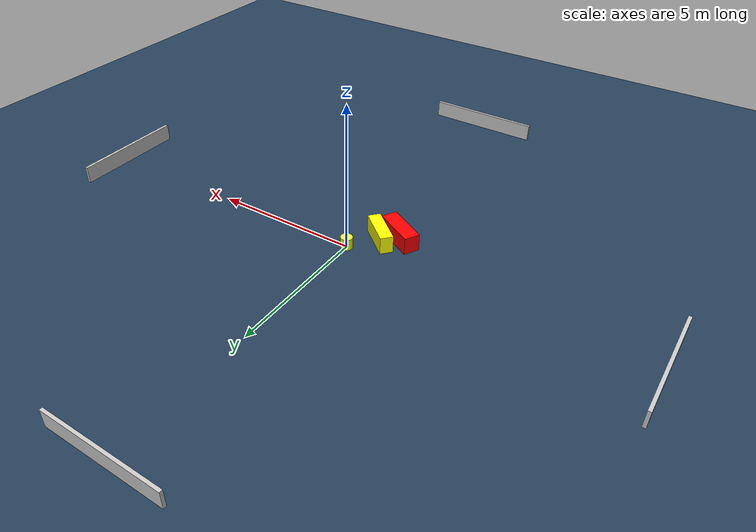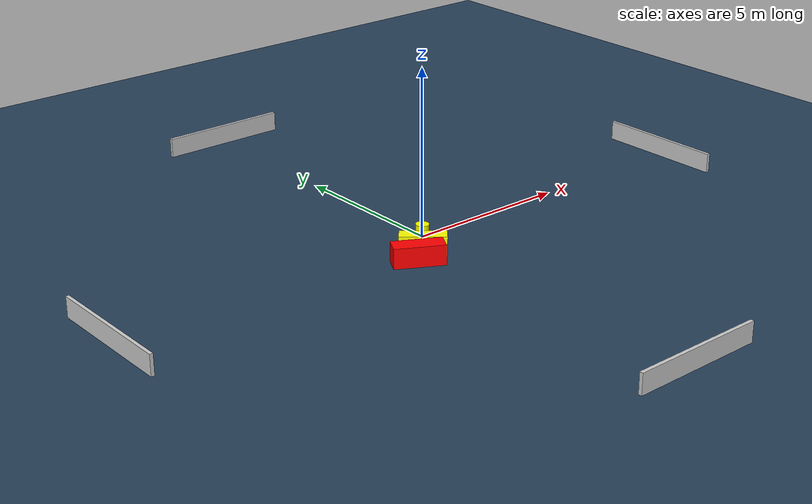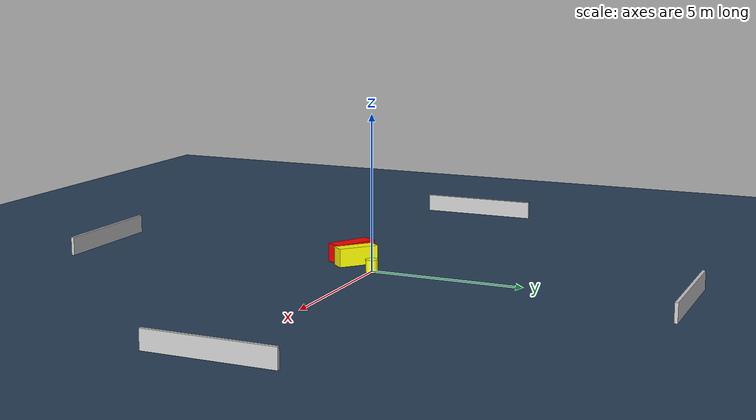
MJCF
<?xml version="1.0" ?>
<mujoco model="generated_environment">
  <option timestep="0.01" integrator="RK4" cone="elliptic"/>
  <default>
    <geom density="1"/>
  </default>
  <asset>
    <texture builtin="gradient" height="3072" name="skybox" rgb1="0.3 0.5 0.7" rgb2="0 0 0" type="skybox" width="512"/>
    <texture builtin="checker" height="300" name="groundplane" rgb1="0.2 0.3 0.4" rgb2="0.1 0.2 0.3" type="2d" width="300"/>
    <material name="groundplane" reflectance="0.2" texrepeat="5 5" texture="groundplane"/>
  </asset>
  <worldbody>
    <light dir="0 0 -1" directional="true" pos="0 0 1.5"/>
    <geom condim="3" friction="0.5 0.005 0.001" material="groundplane" name="floor" pos="0 0 0" size="0 0 0.05" type="plane"/>
    <body name="walls">
      <geom name="wall_1" condim="4" pos="-10.0 0.0 0.3" rgba="0.800000011920929 0.800000011920929 0.800000011920929 1.0" size="0.05 2.0 0.3" type="box"/>
      <geom name="wall_2" condim="4" pos="10.0 0.0 0.3" rgba="0.800000011920929 0.800000011920929 0.800000011920929 1.0" size="0.05 2.0 0.3" type="box"/>
      <geom name="wall_3" condim="4" pos="0.0 -10.0 0.3" rgba="0.800000011920929 0.800000011920929 0.800000011920929 1.0" size="2.0 0.05 0.3" type="box"/>
      <geom name="wall_4" condim="4" pos="0.0 10.0 0.3" rgba="0.800000011920929 0.800000011920929 0.800000011920929 1.0" size="2.0 0.05 0.3" type="box"/>
    </body>
    <body name="robot">
      <joint name="joint_x" type="slide" pos="0 0 0" axis="1 0 0"/>
      <joint name="joint_y" type="slide" pos="0 0 0" axis="0 1 0"/>
      <geom name="robot" type="cylinder" pos="0.0 0.0 0.2" size="0.2 0.2 0.0" mass="5.0" friction="1.0 0.005 0.0001" condim="4" rgba="1.0 1.0 0.0 1.0"/>
    </body>
    <body name="obstacle_1_movable">
      <geom name="obstacle_1_movable" condim="4" pos="-0.7172962160037862 -0.8738410225952434 0.3" euler="0 0 49.74571272006472" friction="0.0 0.005 0.001" rgba="1.0 1.0 0.0 1.0" size="0.21813411030855667 0.6702672102629164 0.3" type="box" mass="0.1"/>
      <joint type="free"/>
    </body>
    <body name="obstacle_2_static">
      <geom name="obstacle_2_static" condim="4" pos="-1.2312747674239986 -1.2709265396712823 0.3" euler="0 0 151.1815885758183" friction="0.0 0.005 0.001" rgba="1.0 0.0 0.0 1.0" size="0.7314425428587148 0.26998359283964796 0.3" type="box"/>
    </body>
  </worldbody>
  <actuator>
    <motor name="actuator_x" joint="joint_x" gear="1" ctrlrange="-1 1"/>
    <motor name="actuator_y" joint="joint_y" gear="1" ctrlrange="-1 1"/>
  </actuator>
</mujoco>
